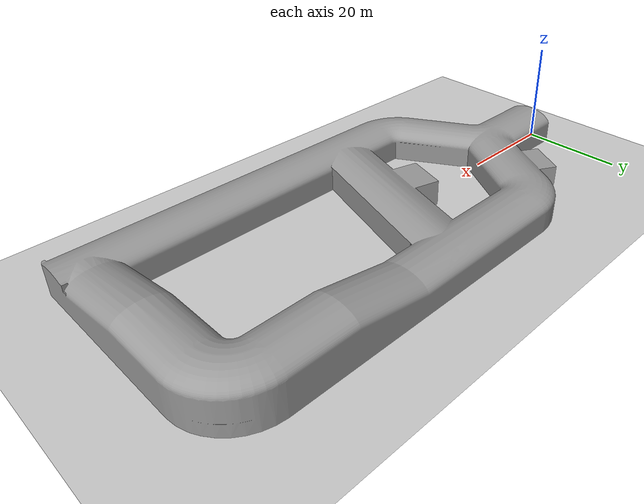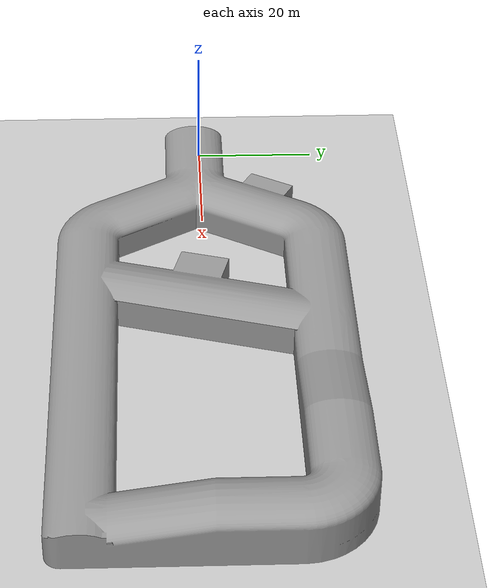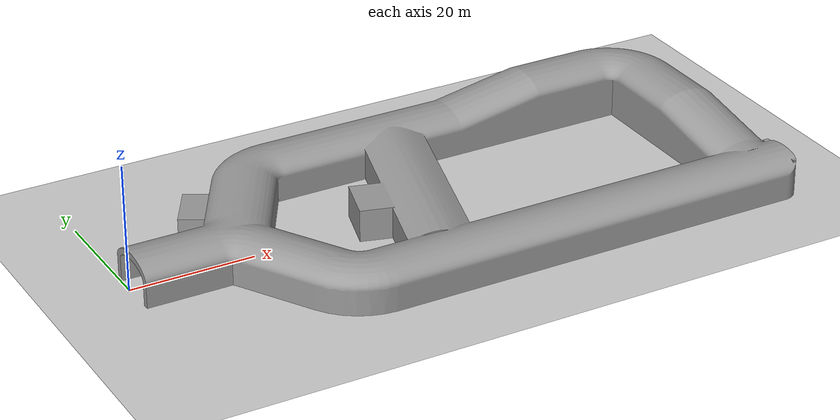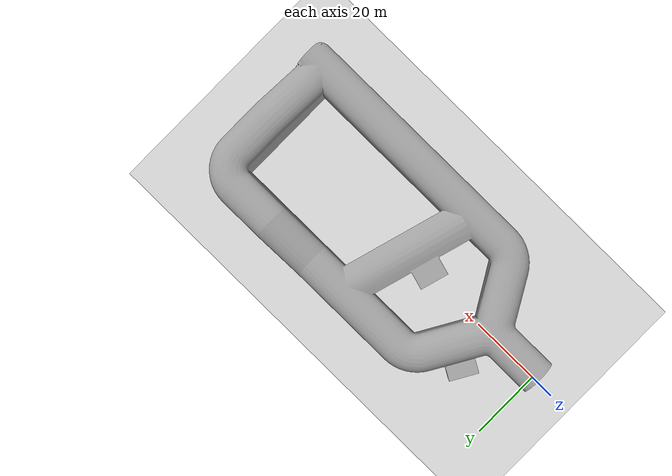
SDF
<sdf version="1.6">
 <world name="default">
  <light name="sun" type="directional">
   <pose>0 0 10 0 -0 0</pose>
   <diffuse>0.8 0.8 0.8 1</diffuse>
   <specular>0.2 0.2 0.2 1</specular>
   <attenuation>
    <range>1000</range>
    <constant>0.9</constant>
    <linear>0.01</linear>
    <quadratic>0.001</quadratic>
   </attenuation>
   <direction>-0.5 0.1 -0.9</direction>
  </light>
  <model name="ground_plane">
   <static>1</static>
   <link name="link">
    <collision name="collision">
     <geometry><plane><normal>0 0 1</normal><size>100 100</size></plane></geometry>
     <surface><friction><ode><mu>100</mu><mu2>50</mu2></ode></friction></surface>
    </collision>
    <visual name="visual">
     <cast_shadows>0</cast_shadows>
     <geometry><plane><normal>0 0 1</normal><size>100 100</size></plane></geometry>
    </visual>
   </link>
  </model>
  <gravity>0 0 -9.8</gravity>
  <magnetic_field>6e-06 2.3e-05 -4.2e-05</magnetic_field>
  <atmosphere type="adiabatic"/>
  <physics name="default_physics" default="0" type="ode">
   <max_step_size>0.001</max_step_size>
   <real_time_factor>1</real_time_factor>
   <real_time_update_rate>1000</real_time_update_rate>
  </physics>
  <scene><ambient>0.4 0.4 0.4 1</ambient><background>0.7 0.7 0.7 1</background><shadows>1</shadows></scene>
  <audio><device>default</device></audio>
  <spherical_coordinates>
   <surface_model>EARTH_WGS84</surface_model>
   <latitude_deg>0</latitude_deg>
   <longitude_deg>0</longitude_deg>
   <elevation>0</elevation>
   <heading_deg>0</heading_deg>
  </spherical_coordinates>
  <model name="hangdao">
   <link name="hangdao::link_0">
    <inertial>
     <mass>1e-08</mass>
     <inertia>
      <ixx>0.166667</ixx>
      <ixy>0</ixy>
      <ixz>0</ixz>
      <iyy>0.166667</iyy>
      <iyz>0</iyz>
      <izz>0.166667</izz>
     </inertia>
    </inertial>
    <pose>-2e-05 3e-06 0 0 -0 0</pose>
    <visual name="visual">
     <geometry>
      <mesh><uri>/home/xu/A_husky/src/husky/husky_gazebo/worlds/hangdao/hangdao.dae</uri><scale>1 1 1</scale></mesh>
     </geometry>
     <material>
      <lighting>1</lighting>
      <script><uri>file://media/materials/scripts/gazebo.material</uri><name>Gazebo/Grey</name></script>
     </material>
    </visual>
    <collision name="collision">
     <geometry>
      <mesh><uri>/home/xu/A_husky/src/husky/husky_gazebo/worlds/hangdao/hangdao.dae</uri><scale>1 1 1</scale></mesh>
     </geometry>
     <surface>
      <friction>
       <ode><mu>1</mu><mu2>1</mu2><fdir1>0 0 0</fdir1><slip1>0</slip1><slip2>0</slip2></ode>
       <torsional>
        <coefficient>1</coefficient>
        <patch_radius>0</patch_radius>
        <surface_radius>0</surface_radius>
        <use_patch_radius>1</use_patch_radius>
        <ode><slip>0</slip></ode>
       </torsional>
      </friction>
      <bounce><restitution_coefficient>0</restitution_coefficient><threshold>1e+06</threshold></bounce>
      <contact>
       <collide_without_contact>0</collide_without_contact>
       <collide_without_contact_bitmask>1</collide_without_contact_bitmask>
       <collide_bitmask>1</collide_bitmask>
       <ode>
        <soft_cfm>0</soft_cfm>
        <soft_erp>0.2</soft_erp>
        <kp>1e+13</kp>
        <kd>1</kd>
        <max_vel>0.01</max_vel>
        <min_depth>0</min_depth>
       </ode>
       <bullet>
        <split_impulse>1</split_impulse>
        <split_impulse_penetration_threshold>-0.01</split_impulse_penetration_threshold>
        <soft_cfm>0</soft_cfm>
        <soft_erp>0.2</soft_erp>
        <kp>1e+13</kp>
        <kd>1</kd>
       </bullet>
      </contact>
     </surface>
    </collision>
   </link>
   <static>1</static>
   <pose>0 24 0 0 0 -1.57</pose>
  </model>
  <light name="user_point_light_0" type="point">
   <pose>17.8312 -0.966396 1 0 -0 0</pose>
   <diffuse>0.5 0.5 0.5 1</diffuse>
   <specular>0.1 0.1 0.1 1</specular>
   <attenuation>
    <range>20</range>
    <constant>0.5</constant>
    <linear>0.01</linear>
    <quadratic>0.001</quadratic>
   </attenuation>
   <cast_shadows>0</cast_shadows>
   <direction>0 0 -1</direction>
  </light>
  <light name="user_point_light_1" type="point">
   <pose>6.00042 -0.731883 1 0 -0 0</pose>
   <diffuse>0.5 0.5 0.5 1</diffuse>
   <specular>0.1 0.1 0.1 1</specular>
   <attenuation>
    <range>20</range>
    <constant>0.5</constant>
    <linear>0.01</linear>
    <quadratic>0.001</quadratic>
   </attenuation>
   <cast_shadows>0</cast_shadows>
   <direction>0 0 -1</direction>
  </light>
  <light name="user_point_light_2" type="point">
   <pose>24.638 13.0518 1 0 -0 0</pose>
   <diffuse>0.5 0.5 0.5 1</diffuse>
   <specular>0.1 0.1 0.1 1</specular>
   <attenuation>
    <range>20</range>
    <constant>0.5</constant>
    <linear>0.01</linear>
    <quadratic>0.001</quadratic>
   </attenuation>
   <cast_shadows>0</cast_shadows>
   <direction>0 0 -1</direction>
  </light>
  <light name="user_point_light_3" type="point">
   <pose>26.0858 -16.8172 1 0 -0 0</pose>
   <diffuse>0.5 0.5 0.5 1</diffuse>
   <specular>0.1 0.1 0.1 1</specular>
   <attenuation>
    <range>20</range>
    <constant>0.5</constant>
    <linear>0.01</linear>
    <quadratic>0.001</quadratic>
   </attenuation>
   <cast_shadows>0</cast_shadows>
   <direction>0 0 -1</direction>
  </light>
  <light name="user_point_light_4" type="point">
   <pose>50.0139 18.1167 1 0 -0 0</pose>
   <diffuse>0.5 0.5 0.5 1</diffuse>
   <specular>0.1 0.1 0.1 1</specular>
   <attenuation>
    <range>20</range>
    <constant>0.5</constant>
    <linear>0.01</linear>
    <quadratic>0.001</quadratic>
   </attenuation>
   <cast_shadows>0</cast_shadows>
   <direction>0 0 -1</direction>
  </light>
  <light name="user_point_light_5" type="point">
   <pose>46.8086 -0.566852 1 0 -0 0</pose>
   <diffuse>0.5 0.5 0.5 1</diffuse>
   <specular>0.1 0.1 0.1 1</specular>
   <attenuation>
    <range>20</range>
    <constant>0.5</constant>
    <linear>0.01</linear>
    <quadratic>0.001</quadratic>
   </attenuation>
   <cast_shadows>0</cast_shadows>
   <direction>0 0 -1</direction>
  </light>
  <light name="user_point_light_6" type="point">
   <pose>41.9086 -18.8385 1 0 -0 0</pose>
   <diffuse>0.5 0.5 0.5 1</diffuse>
   <specular>0.1 0.1 0.1 1</specular>
   <attenuation>
    <range>20</range>
    <constant>0.5</constant>
    <linear>0.01</linear>
    <quadratic>0.001</quadratic>
   </attenuation>
   <cast_shadows>0</cast_shadows>
   <direction>0 0 -1</direction>
  </light>
  <light name="user_point_light_7" type="point">
   <pose>59.2735 -19.2199 1 0 -0 0</pose>
   <diffuse>0.5 0.5 0.5 1</diffuse>
   <specular>0.1 0.1 0.1 1</specular>
   <attenuation>
    <range>20</range>
    <constant>0.5</constant>
    <linear>0.01</linear>
    <quadratic>0.001</quadratic>
   </attenuation>
   <cast_shadows>0</cast_shadows>
   <direction>0 0 -1</direction>
  </light>
  <light name="user_point_light_8" type="point">
   <pose>75.0445 -19.2321 1 0 -0 0</pose>
   <diffuse>0.5 0.5 0.5 1</diffuse>
   <specular>0.1 0.1 0.1 1</specular>
   <attenuation>
    <range>20</range>
    <constant>0.5</constant>
    <linear>0.01</linear>
    <quadratic>0.001</quadratic>
   </attenuation>
   <cast_shadows>0</cast_shadows>
   <direction>0 0 -1</direction>
  </light>
  <light name="user_point_light_9" type="point">
   <pose>93.5256 -19.5946 1 0 -0 0</pose>
   <diffuse>0.5 0.5 0.5 1</diffuse>
   <specular>0.1 0.1 0.1 1</specular>
   <attenuation>
    <range>20</range>
    <constant>0.5</constant>
    <linear>0.01</linear>
    <quadratic>0.001</quadratic>
   </attenuation>
   <cast_shadows>0</cast_shadows>
   <direction>0 0 -1</direction>
  </light>
  <light name="user_point_light_10" type="point">
   <pose>67.0501 17.9549 1 0 -0 0</pose>
   <diffuse>0.5 0.5 0.5 1</diffuse>
   <specular>0.1 0.1 0.1 1</specular>
   <attenuation>
    <range>20</range>
    <constant>0.5</constant>
    <linear>0.01</linear>
    <quadratic>0.001</quadratic>
   </attenuation>
   <cast_shadows>0</cast_shadows>
   <direction>0 0 -1</direction>
  </light>
  <light name="user_point_light_11" type="point">
   <pose>88.6678 17.7042 1 0 -0 0</pose>
   <diffuse>0.5 0.5 0.5 1</diffuse>
   <specular>0.1 0.1 0.1 1</specular>
   <attenuation>
    <range>20</range>
    <constant>0.5</constant>
    <linear>0.01</linear>
    <quadratic>0.001</quadratic>
   </attenuation>
   <cast_shadows>0</cast_shadows>
   <direction>0 0 -1</direction>
  </light>
  <light name="user_point_light_12" type="point">
   <pose>96.2336 0.570116 1 0 -0 0</pose>
   <diffuse>0.5 0.5 0.5 1</diffuse>
   <specular>0.1 0.1 0.1 1</specular>
   <attenuation>
    <range>20</range>
    <constant>0.5</constant>
    <linear>0.01</linear>
    <quadratic>0.001</quadratic>
   </attenuation>
   <cast_shadows>0</cast_shadows>
   <direction>0 0 -1</direction>
  </light>
 </world>
</sdf>
